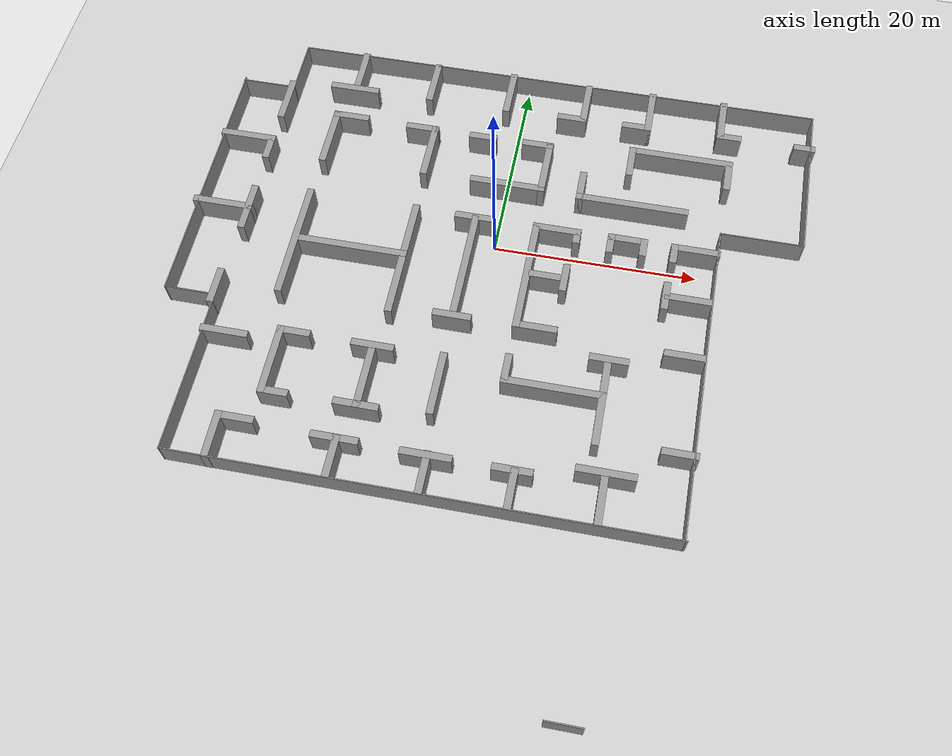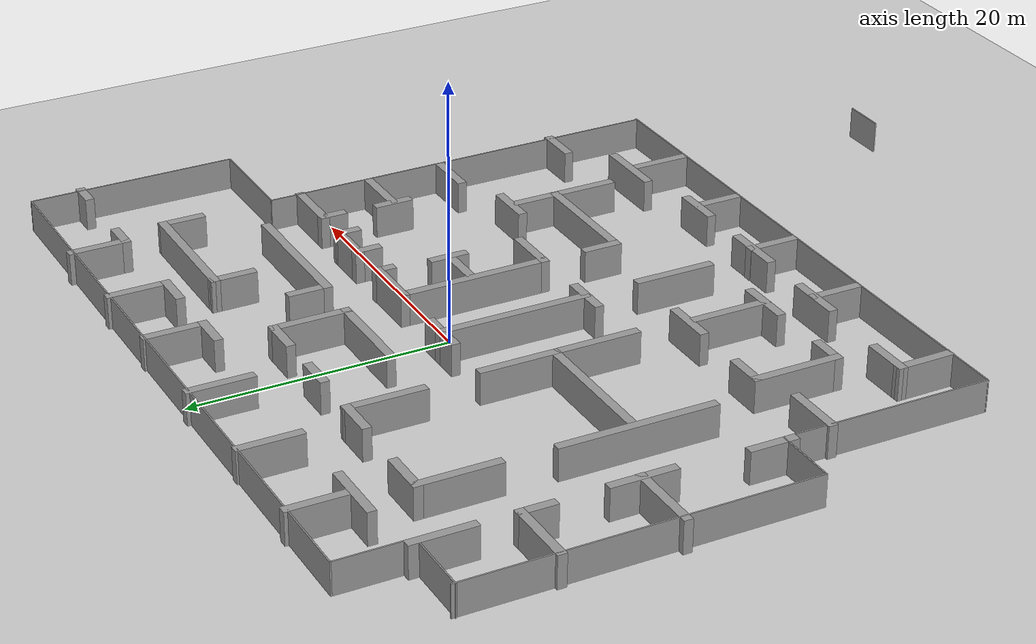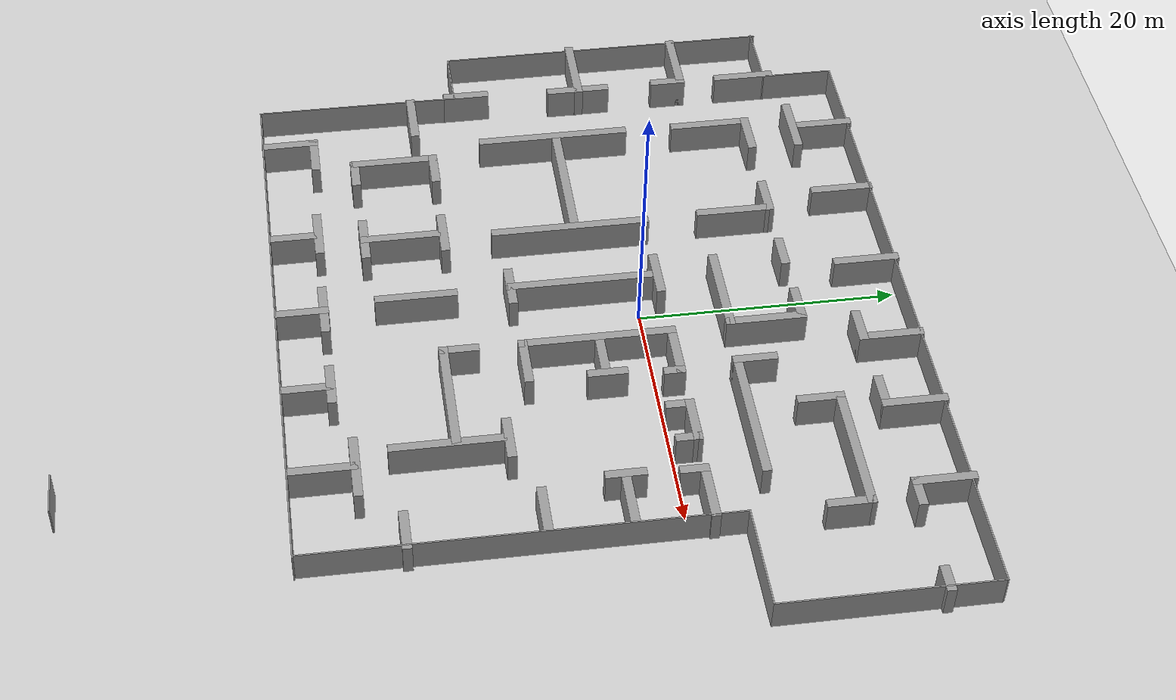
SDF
<sdf version="1.7">
 <world name="default">
  <model name="ground_plane">
   <static>1</static>
   <link name="Wall_split_y">
    <collision name="Wall_split_y_Collision">
     <geometry><box><size>1 100 2.5</size></box></geometry>
     <pose>4.0 0 1.25 0 -0 0</pose>
    </collision>
    <visual name="Wall_split_y_Visual">
     <pose>4.0 0 1.25 0 -0 0</pose>
     <geometry><box><size>1 100 2.5</size></box></geometry>
     <material>
      <script><uri>file://media/materials/scripts/gazebo.material</uri><name>Gazebo/Grey</name></script>
      <ambient>1 1 1 1</ambient>
     </material>
     <meta><layer>0</layer></meta>
    </visual>
   </link>
   <link name="link">
    <collision name="collision">
     <geometry><plane><normal>0 0 1</normal><size>100 100</size></plane></geometry>
     <surface><friction><ode><mu>100</mu><mu2>50</mu2></ode></friction></surface>
    </collision>
    <visual name="visual">
     <cast_shadows>0</cast_shadows>
     <geometry><plane><normal>0 0 1</normal><size>100 100</size></plane></geometry>
     <material>
      <script><uri>file://media/materials/scripts/gazebo.material</uri><name>Gazebo/Grey</name></script>
     </material>
    </visual>
   </link>
  </model>
  <model name="map8">
   <pose>-0.03691 -11.806 0 0 -0 0</pose>
   <link name="Wall_0">
    <collision name="Wall_0_Collision">
     <geometry><box><size>26.6 0.105 2.5</size></box></geometry>
     <pose>0 0 1.25 0 -0 0</pose>
    </collision>
    <visual name="Wall_0_Visual">
     <pose>0 0 1.25 0 -0 0</pose>
     <geometry><box><size>26.6 0.105 2.5</size></box></geometry>
     <material>
      <script><uri>file://media/materials/scripts/gazebo.material</uri><name>Gazebo/Grey</name></script>
      <ambient>1 1 1 1</ambient>
     </material>
     <meta><layer>0</layer></meta>
    </visual>
    <pose>-29.80348 13.45694 0 0 0 -1.5708</pose>
   </link>
   <link name="Wall_1">
    <collision name="Wall_1_Collision">
     <geometry><box><size>5.075 0.105 2.5</size></box></geometry>
     <pose>0 0 1.25 0 -0 0</pose>
    </collision>
    <visual name="Wall_1_Visual">
     <pose>0 0 1.25 0 -0 0</pose>
     <geometry><box><size>5.075 0.105 2.5</size></box></geometry>
     <material>
      <script><uri>file://media/materials/scripts/gazebo.material</uri><name>Gazebo/Grey</name></script>
      <ambient>1 1 1 1</ambient>
     </material>
     <meta><layer>0</layer></meta>
    </visual>
    <pose>-27.31848 0.209474 0 0 0 0</pose>
   </link>
   <link name="Wall_100">
    <collision name="Wall_100_Collision">
     <geometry><box><size>5.495042 0.7 2.5</size></box></geometry>
     <pose>0 0 1.25 0 -0 0</pose>
    </collision>
    <visual name="Wall_100_Visual">
     <pose>0 0 1.25 0 -0 0</pose>
     <geometry><box><size>5.495042 0.7 2.5</size></box></geometry>
     <material>
      <script><uri>file://media/materials/scripts/gazebo.material</uri><name>Gazebo/Grey</name></script>
      <ambient>1 1 1 1</ambient>
     </material>
     <meta><layer>0</layer></meta>
    </visual>
    <pose>14.28707 -11.01093 0 0 0 0</pose>
   </link>
   <link name="Wall_102">
    <collision name="Wall_102_Collision">
     <geometry><box><size>5.145 0.7 2.5</size></box></geometry>
     <pose>0 0 1.25 0 -0 0</pose>
    </collision>
    <visual name="Wall_102_Visual">
     <pose>0 0 1.25 0 -0 0</pose>
     <geometry><box><size>5.145 0.7 2.5</size></box></geometry>
     <material>
      <script><uri>file://media/materials/scripts/gazebo.material</uri><name>Gazebo/Grey</name></script>
      <ambient>1 1 1 1</ambient>
     </material>
     <meta><layer>0</layer></meta>
    </visual>
    <pose>14.22071 -13.33388 0 0 0 -1.5708</pose>
   </link>
   <link name="Wall_104">
    <collision name="Wall_104_Collision">
     <geometry><box><size>3.325 0.105 2.5</size></box></geometry>
     <pose>0 0 1.25 0 -0 0</pose>
    </collision>
    <visual name="Wall_104_Visual">
     <pose>0 0 1.25 0 -0 0</pose>
     <geometry><box><size>3.325 0.105 2.5</size></box></geometry>
     <material>
      <script><uri>file://media/materials/scripts/gazebo.material</uri><name>Gazebo/Grey</name></script>
      <ambient>1 1 1 1</ambient>
     </material>
     <meta><layer>0</layer></meta>
    </visual>
    <pose>13.96444 -32.51283 0 0 0 0</pose>
   </link>
   <link name="Wall_106">
    <collision name="Wall_106_Collision">
     <geometry><box><size>3.92 0.7 2.5</size></box></geometry>
     <pose>0 0 1.25 0 -0 0</pose>
    </collision>
    <visual name="Wall_106_Visual">
     <pose>0 0 1.25 0 -0 0</pose>
     <geometry><box><size>3.92 0.7 2.5</size></box></geometry>
     <material>
      <script><uri>file://media/materials/scripts/gazebo.material</uri><name>Gazebo/Grey</name></script>
      <ambient>1 1 1 1</ambient>
     </material>
     <meta><layer>0</layer></meta>
    </visual>
    <pose>6.376062 -13.98369 0 0 0 -1.5708</pose>
   </link>
   <link name="Wall_108">
    <collision name="Wall_108_Collision">
     <geometry><box><size>3.744853 0.7 2.5</size></box></geometry>
     <pose>0 0 1.25 0 -0 0</pose>
    </collision>
    <visual name="Wall_108_Visual">
     <pose>0 0 1.25 0 -0 0</pose>
     <geometry><box><size>3.744853 0.7 2.5</size></box></geometry>
     <material>
      <script><uri>file://media/materials/scripts/gazebo.material</uri><name>Gazebo/Grey</name></script>
      <ambient>1 1 1 1</ambient>
     </material>
     <meta><layer>0</layer></meta>
    </visual>
    <pose>6.167042 -12.22963 0 0 0 0</pose>
   </link>
   <link name="Wall_110">
    <collision name="Wall_110_Collision">
     <geometry><box><size>3.395147 0.7 2.5</size></box></geometry>
     <pose>0 0 1.25 0 -0 0</pose>
    </collision>
    <visual name="Wall_110_Visual">
     <pose>0 0 1.25 0 -0 0</pose>
     <geometry><box><size>3.395147 0.7 2.5</size></box></geometry>
     <material>
      <script><uri>file://media/materials/scripts/gazebo.material</uri><name>Gazebo/Grey</name></script>
      <ambient>1 1 1 1</ambient>
     </material>
     <meta><layer>0</layer></meta>
    </visual>
    <pose>20.44357 -8.03873 0 0 0 3.14159</pose>
   </link>
   <link name="Wall_112">
    <collision name="Wall_112_Collision">
     <geometry><box><size>3.92 0.7 2.5</size></box></geometry>
     <pose>0 0 1.25 0 -0 0</pose>
    </collision>
    <visual name="Wall_112_Visual">
     <pose>0 0 1.25 0 -0 0</pose>
     <geometry><box><size>3.92 0.7 2.5</size></box></geometry>
     <material>
      <script><uri>file://media/materials/scripts/gazebo.material</uri><name>Gazebo/Grey</name></script>
      <ambient>1 1 1 1</ambient>
     </material>
     <meta><layer>0</layer></meta>
    </visual>
    <pose>19.79712 1.792875 0 0 0 3.14159</pose>
   </link>
   <link name="Wall_114">
    <collision name="Wall_114_Collision">
     <geometry><box><size>3.045343 0.7 2.5</size></box></geometry>
     <pose>0 0 1.25 0 -0 0</pose>
    </collision>
    <visual name="Wall_114_Visual">
     <pose>0 0 1.25 0 -0 0</pose>
     <geometry><box><size>3.045343 0.7 2.5</size></box></geometry>
     <material>
      <script><uri>file://media/materials/scripts/gazebo.material</uri><name>Gazebo/Grey</name></script>
      <ambient>1 1 1 1</ambient>
     </material>
     <meta><layer>0</layer></meta>
    </visual>
    <pose>17.32297 7.93037 0 0 0 -1.5708</pose>
   </link>
   <link name="Wall_116">
    <collision name="Wall_116_Collision">
     <geometry><box><size>4.55 0.7 2.5</size></box></geometry>
     <pose>0 0 1.25 0 -0 0</pose>
    </collision>
    <visual name="Wall_116_Visual">
     <pose>0 0 1.25 0 -0 0</pose>
     <geometry><box><size>4.55 0.7 2.5</size></box></geometry>
     <material>
      <script><uri>file://media/materials/scripts/gazebo.material</uri><name>Gazebo/Grey</name></script>
      <ambient>1 1 1 1</ambient>
     </material>
     <meta><layer>0</layer></meta>
    </visual>
    <pose>19.44957 7.89537 0 0 0 0</pose>
   </link>
   <link name="Wall_118">
    <collision name="Wall_118_Collision">
     <geometry><box><size>2.170014 0.7 2.5</size></box></geometry>
     <pose>0 0 1.25 0 -0 0</pose>
    </collision>
    <visual name="Wall_118_Visual">
     <pose>0 0 1.25 0 -0 0</pose>
     <geometry><box><size>2.170014 0.7 2.5</size></box></geometry>
     <material>
      <script><uri>file://media/materials/scripts/gazebo.material</uri><name>Gazebo/Grey</name></script>
      <ambient>1 1 1 1</ambient>
     </material>
     <meta><layer>0</layer></meta>
    </visual>
    <pose>11.31802 12.88987 0 0 0 1.56841</pose>
   </link>
   <link name="Wall_119">
    <collision name="Wall_119_Collision">
     <geometry><box><size>3.924207 0.7 2.5</size></box></geometry>
     <pose>0 0 1.25 0 -0 0</pose>
    </collision>
    <visual name="Wall_119_Visual">
     <pose>0 0 1.25 0 -0 0</pose>
     <geometry><box><size>3.924207 0.7 2.5</size></box></geometry>
     <material>
      <script><uri>file://media/materials/scripts/gazebo.material</uri><name>Gazebo/Grey</name></script>
      <ambient>1 1 1 1</ambient>
     </material>
     <meta><layer>0</layer></meta>
    </visual>
    <pose>12.93187 13.62102 0 0 0 -0.002388</pose>
   </link>
   <link name="Wall_120">
    <collision name="Wall_120_Collision">
     <geometry><box><size>1.994965 0.7 2.5</size></box></geometry>
     <pose>0 0 1.25 0 -0 0</pose>
    </collision>
    <visual name="Wall_120_Visual">
     <pose>0 0 1.25 0 -0 0</pose>
     <geometry><box><size>1.994965 0.7 2.5</size></box></geometry>
     <material>
      <script><uri>file://media/materials/scripts/gazebo.material</uri><name>Gazebo/Grey</name></script>
      <ambient>1 1 1 1</ambient>
     </material>
     <meta><layer>0</layer></meta>
    </visual>
    <pose>14.54187 12.96967 0 0 0 -1.57404</pose>
   </link>
   <link name="Wall_122">
    <collision name="Wall_122_Collision">
     <geometry><box><size>2.170014 0.7 2.5</size></box></geometry>
     <pose>0 0 1.25 0 -0 0</pose>
    </collision>
    <visual name="Wall_122_Visual">
     <pose>0 0 1.25 0 -0 0</pose>
     <geometry><box><size>2.170014 0.7 2.5</size></box></geometry>
     <material>
      <script><uri>file://media/materials/scripts/gazebo.material</uri><name>Gazebo/Grey</name></script>
      <ambient>1 1 1 1</ambient>
     </material>
     <meta><layer>0</layer></meta>
    </visual>
    <pose>17.54207 12.81987 0 0 0 1.5708</pose>
   </link>
   <link name="Wall_123">
    <collision name="Wall_123_Collision">
     <geometry><box><size>4.795196 0.7 2.5</size></box></geometry>
     <pose>0 0 1.25 0 -0 0</pose>
    </collision>
    <visual name="Wall_123_Visual">
     <pose>0 0 1.25 0 -0 0</pose>
     <geometry><box><size>4.795196 0.7 2.5</size></box></geometry>
     <material>
      <script><uri>file://media/materials/scripts/gazebo.material</uri><name>Gazebo/Grey</name></script>
      <ambient>1 1 1 1</ambient>
     </material>
     <meta><layer>0</layer></meta>
    </visual>
    <pose>19.58957 13.55487 0 0 0 0</pose>
   </link>
   <link name="Wall_125">
    <collision name="Wall_125_Collision">
     <geometry><box><size>4.55 0.7 2.5</size></box></geometry>
     <pose>0 0 1.25 0 -0 0</pose>
    </collision>
    <visual name="Wall_125_Visual">
     <pose>0 0 1.25 0 -0 0</pose>
     <geometry><box><size>4.55 0.7 2.5</size></box></geometry>
     <material>
      <script><uri>file://media/materials/scripts/gazebo.material</uri><name>Gazebo/Grey</name></script>
      <ambient>1 1 1 1</ambient>
     </material>
     <meta><layer>0</layer></meta>
    </visual>
    <pose>-17.88633 30.17357 0 0 0 -1.5708</pose>
   </link>
   <link name="Wall_128">
    <collision name="Wall_128_Collision">
     <geometry><box><size>5.144832 0.7 2.5</size></box></geometry>
     <pose>0 0 1.25 0 -0 0</pose>
    </collision>
    <visual name="Wall_128_Visual">
     <pose>0 0 1.25 0 -0 0</pose>
     <geometry><box><size>5.144832 0.7 2.5</size></box></geometry>
     <material>
      <script><uri>file://media/materials/scripts/gazebo.material</uri><name>Gazebo/Grey</name></script>
      <ambient>1 1 1 1</ambient>
     </material>
     <meta><layer>0</layer></meta>
    </visual>
    <pose>-18.02283 27.55067 0 0 0 0</pose>
   </link>
   <link name="Wall_13">
    <collision name="Wall_13_Collision">
     <geometry><box><size>4.97 0.7 2.5</size></box></geometry>
     <pose>0 0 1.25 0 -0 0</pose>
    </collision>
    <visual name="Wall_13_Visual">
     <pose>0 0 1.25 0 -0 0</pose>
     <geometry><box><size>4.97 0.7 2.5</size></box></geometry>
     <material>
      <script><uri>file://media/materials/scripts/gazebo.material</uri><name>Gazebo/Grey</name></script>
      <ambient>1 1 1 1</ambient>
     </material>
     <meta><layer>0</layer></meta>
    </visual>
    <pose>-24.71105 24.76964 0 0 0 -1.5708</pose>
   </link>
   <link name="Wall_130">
    <collision name="Wall_130_Collision">
     <geometry><box><size>4.970042 0.7 2.5</size></box></geometry>
     <pose>0 0 1.25 0 -0 0</pose>
    </collision>
    <visual name="Wall_130_Visual">
     <pose>0 0 1.25 0 -0 0</pose>
     <geometry><box><size>4.970042 0.7 2.5</size></box></geometry>
     <material>
      <script><uri>file://media/materials/scripts/gazebo.material</uri><name>Gazebo/Grey</name></script>
      <ambient>1 1 1 1</ambient>
     </material>
     <meta><layer>0</layer></meta>
    </visual>
    <pose>-9.95673 29.84317 0 0 0 -1.5708</pose>
   </link>
   <link name="Wall_132">
    <collision name="Wall_132_Collision">
     <geometry><box><size>5.145336 0.7 2.5</size></box></geometry>
     <pose>0 0 1.25 0 -0 0</pose>
    </collision>
    <visual name="Wall_132_Visual">
     <pose>0 0 1.25 0 -0 0</pose>
     <geometry><box><size>5.145336 0.7 2.5</size></box></geometry>
     <material>
      <script><uri>file://media/materials/scripts/gazebo.material</uri><name>Gazebo/Grey</name></script>
      <ambient>1 1 1 1</ambient>
     </material>
     <meta><layer>0</layer></meta>
    </visual>
    <pose>-1.737358 29.88307 0 0 0 -1.5708</pose>
   </link>
   <link name="Wall_134">
    <collision name="Wall_134_Collision">
     <geometry><box><size>4.97 0.7 2.5</size></box></geometry>
     <pose>0 0 1.25 0 -0 0</pose>
    </collision>
    <visual name="Wall_134_Visual">
     <pose>0 0 1.25 0 -0 0</pose>
     <geometry><box><size>4.97 0.7 2.5</size></box></geometry>
     <material>
      <script><uri>file://media/materials/scripts/gazebo.material</uri><name>Gazebo/Grey</name></script>
      <ambient>1 1 1 1</ambient>
     </material>
     <meta><layer>0</layer></meta>
    </visual>
    <pose>6.388942 29.85857 0 0 0 -1.5708</pose>
   </link>
   <link name="Wall_135">
    <collision name="Wall_135_Collision">
     <geometry><box><size>3.044909 0.7 2.5</size></box></geometry>
     <pose>0 0 1.25 0 -0 0</pose>
    </collision>
    <visual name="Wall_135_Visual">
     <pose>0 0 1.25 0 -0 0</pose>
     <geometry><box><size>3.044909 0.7 2.5</size></box></geometry>
     <material>
      <script><uri>file://media/materials/scripts/gazebo.material</uri><name>Gazebo/Grey</name></script>
      <ambient>1 1 1 1</ambient>
     </material>
     <meta><layer>0</layer></meta>
    </visual>
    <pose>5.216442 27.72357 0 0 0 3.14159</pose>
   </link>
   <link name="Wall_138">
    <collision name="Wall_138_Collision">
     <geometry><box><size>2.170014 0.7 2.5</size></box></geometry>
     <pose>0 0 1.25 0 -0 0</pose>
    </collision>
    <visual name="Wall_138_Visual">
     <pose>0 0 1.25 0 -0 0</pose>
     <geometry><box><size>2.170014 0.7 2.5</size></box></geometry>
     <material>
      <script><uri>file://media/materials/scripts/gazebo.material</uri><name>Gazebo/Grey</name></script>
      <ambient>1 1 1 1</ambient>
     </material>
     <meta><layer>0</layer></meta>
    </visual>
    <pose>29.27127 28.11557 0 0 0 3.14159</pose>
   </link>
   <link name="Wall_140">
    <collision name="Wall_140_Collision">
     <geometry><box><size>2.870301 0.7 2.5</size></box></geometry>
     <pose>0 0 1.25 0 -0 0</pose>
    </collision>
    <visual name="Wall_140_Visual">
     <pose>0 0 1.25 0 -0 0</pose>
     <geometry><box><size>2.870301 0.7 2.5</size></box></geometry>
     <material>
      <script><uri>file://media/materials/scripts/gazebo.material</uri><name>Gazebo/Grey</name></script>
      <ambient>1 1 1 1</ambient>
     </material>
     <meta><layer>0</layer></meta>
    </visual>
    <pose>-3.418758 23.59707 0 0 0 0</pose>
   </link>
   <link name="Wall_15">
    <collision name="Wall_15_Collision">
     <geometry><box><size>5.67 0.7 2.5</size></box></geometry>
     <pose>0 0 1.25 0 -0 0</pose>
    </collision>
    <visual name="Wall_15_Visual">
     <pose>0 0 1.25 0 -0 0</pose>
     <geometry><box><size>5.67 0.7 2.5</size></box></geometry>
     <material>
      <script><uri>file://media/materials/scripts/gazebo.material</uri><name>Gazebo/Grey</name></script>
      <ambient>1 1 1 1</ambient>
     </material>
     <meta><layer>0</layer></meta>
    </visual>
    <pose>-27.27753 19.37257 0 0 0 0</pose>
   </link>
   <link name="Wall_16">
    <collision name="Wall_16_Collision">
     <geometry><box><size>2.870294 0.7 2.5</size></box></geometry>
     <pose>0 0 1.25 0 -0 0</pose>
    </collision>
    <visual name="Wall_16_Visual">
     <pose>0 0 1.25 0 -0 0</pose>
     <geometry><box><size>2.870294 0.7 2.5</size></box></geometry>
     <material>
      <script><uri>file://media/materials/scripts/gazebo.material</uri><name>Gazebo/Grey</name></script>
      <ambient>1 1 1 1</ambient>
     </material>
     <meta><layer>0</layer></meta>
    </visual>
    <pose>-24.79253 18.28757 0 0 0 -1.5708</pose>
   </link>
   <link name="Wall_18">
    <collision name="Wall_18_Collision">
     <geometry><box><size>6.020189 0.7 2.5</size></box></geometry>
     <pose>0 0 1.25 0 -0 0</pose>
    </collision>
    <visual name="Wall_18_Visual">
     <pose>0 0 1.25 0 -0 0</pose>
     <geometry><box><size>6.020189 0.7 2.5</size></box></geometry>
     <material>
      <script><uri>file://media/materials/scripts/gazebo.material</uri><name>Gazebo/Grey</name></script>
      <ambient>1 1 1 1</ambient>
     </material>
     <meta><layer>0</layer></meta>
    </visual>
    <pose>-27.34613 10.66807 0 0 0 0</pose>
   </link>
   <link name="Wall_2">
    <collision name="Wall_2_Collision">
     <geometry><box><size>16.23762 0.105 2.5</size></box></geometry>
     <pose>0 0 1.25 0 -0 0</pose>
    </collision>
    <visual name="Wall_2_Visual">
     <pose>0 0 1.25 0 -0 0</pose>
     <geometry><box><size>16.23762 0.105 2.5</size></box></geometry>
     <material>
      <script><uri>file://media/materials/scripts/gazebo.material</uri><name>Gazebo/Grey</name></script>
      <ambient>1 1 1 1</ambient>
     </material>
     <meta><layer>0</layer></meta>
    </visual>
    <pose>-24.86505 -7.85666 0 0 0 -1.57471</pose>
   </link>
   <link name="Wall_20">
    <collision name="Wall_20_Collision">
     <geometry><box><size>5.144832 0.7 2.5</size></box></geometry>
     <pose>0 0 1.25 0 -0 0</pose>
    </collision>
    <visual name="Wall_20_Visual">
     <pose>0 0 1.25 0 -0 0</pose>
     <geometry><box><size>5.144832 0.7 2.5</size></box></geometry>
     <material>
      <script><uri>file://media/materials/scripts/gazebo.material</uri><name>Gazebo/Grey</name></script>
      <ambient>1 1 1 1</ambient>
     </material>
     <meta><layer>0</layer></meta>
    </visual>
    <pose>-24.71063 10.63657 0 0 0 -1.5708</pose>
   </link>
   <link name="Wall_22">
    <collision name="Wall_22_Collision">
     <geometry><box><size>12.14514 0.7 2.5</size></box></geometry>
     <pose>0 0 1.25 0 -0 0</pose>
    </collision>
    <visual name="Wall_22_Visual">
     <pose>0 0 1.25 0 -0 0</pose>
     <geometry><box><size>12.14514 0.7 2.5</size></box></geometry>
     <material>
      <script><uri>file://media/materials/scripts/gazebo.material</uri><name>Gazebo/Grey</name></script>
      <ambient>1 1 1 1</ambient>
     </material>
     <meta><layer>0</layer></meta>
    </visual>
    <pose>-19.11063 7.74557 0 0 0 -1.5708</pose>
   </link>
   <link name="Wall_24">
    <collision name="Wall_24_Collision">
     <geometry><box><size>10.85 0.7 2.5</size></box></geometry>
     <pose>0 0 1.25 0 -0 0</pose>
    </collision>
    <visual name="Wall_24_Visual">
     <pose>0 0 1.25 0 -0 0</pose>
     <geometry><box><size>10.85 0.7 2.5</size></box></geometry>
     <material>
      <script><uri>file://media/materials/scripts/gazebo.material</uri><name>Gazebo/Grey</name></script>
      <ambient>1 1 1 1</ambient>
     </material>
     <meta><layer>0</layer></meta>
    </visual>
    <pose>-13.38673 7.98987 0 0 0 0</pose>
   </link>
   <link name="Wall_26">
    <collision name="Wall_26_Collision">
     <geometry><box><size>12.49514 0.7 2.5</size></box></geometry>
     <pose>0 0 1.25 0 -0 0</pose>
    </collision>
    <visual name="Wall_26_Visual">
     <pose>0 0 1.25 0 -0 0</pose>
     <geometry><box><size>12.49514 0.7 2.5</size></box></geometry>
     <material>
      <script><uri>file://media/materials/scripts/gazebo.material</uri><name>Gazebo/Grey</name></script>
      <ambient>1 1 1 1</ambient>
     </material>
     <meta><layer>0</layer></meta>
    </visual>
    <pose>-8.27533 7.63147 0 0 0 -1.5708</pose>
   </link>
   <link name="Wall_28">
    <collision name="Wall_28_Collision">
     <geometry><box><size>3.745 0.7 2.5</size></box></geometry>
     <pose>0 0 1.25 0 -0 0</pose>
    </collision>
    <visual name="Wall_28_Visual">
     <pose>0 0 1.25 0 -0 0</pose>
     <geometry><box><size>3.745 0.7 2.5</size></box></geometry>
     <material>
      <script><uri>file://media/materials/scripts/gazebo.material</uri><name>Gazebo/Grey</name></script>
      <ambient>1 1 1 1</ambient>
     </material>
     <meta><layer>0</layer></meta>
    </visual>
    <pose>-25.11082 1.220604 0 0 0 -1.5708</pose>
   </link>
   <link name="Wall_3">
    <collision name="Wall_3_Collision">
     <geometry><box><size>46.9 0.105 2.5</size></box></geometry>
     <pose>0 0 1.25 0 -0 0</pose>
    </collision>
    <visual name="Wall_3_Visual">
     <pose>0 0 1.25 0 -0 0</pose>
     <geometry><box><size>46.9 0.105 2.5</size></box></geometry>
     <material>
      <script><uri>file://media/materials/scripts/gazebo.material</uri><name>Gazebo/Grey</name></script>
      <ambient>1 1 1 1</ambient>
     </material>
     <meta><layer>0</layer></meta>
    </visual>
    <pose>-1.499064 -15.92276 0 0 0 0</pose>
   </link>
   <link name="Wall_30">
    <collision name="Wall_30_Collision">
     <geometry><box><size>4.619671 0.7 2.5</size></box></geometry>
     <pose>0 0 1.25 0 -0 0</pose>
    </collision>
    <visual name="Wall_30_Visual">
     <pose>0 0 1.25 0 -0 0</pose>
     <geometry><box><size>4.619671 0.7 2.5</size></box></geometry>
     <material>
      <script><uri>file://media/materials/scripts/gazebo.material</uri><name>Gazebo/Grey</name></script>
      <ambient>1 1 1 1</ambient>
     </material>
     <meta><layer>0</layer></meta>
    </visual>
    <pose>-22.81083 -3.453758 0 0 0 0</pose>
   </link>
   <link name="Wall_32">
    <collision name="Wall_32_Collision">
     <geometry><box><size>3.745 0.7 2.5</size></box></geometry>
     <pose>0 0 1.25 0 -0 0</pose>
    </collision>
    <visual name="Wall_32_Visual">
     <pose>0 0 1.25 0 -0 0</pose>
     <geometry><box><size>3.745 0.7 2.5</size></box></geometry>
     <material>
      <script><uri>file://media/materials/scripts/gazebo.material</uri><name>Gazebo/Grey</name></script>
      <ambient>1 1 1 1</ambient>
     </material>
     <meta><layer>0</layer></meta>
    </visual>
    <pose>-17.46773 23.75457 0 0 0 3.14159</pose>
   </link>
   <link name="Wall_33">
    <collision name="Wall_33_Collision">
     <geometry><box><size>6.544685 0.7 2.5</size></box></geometry>
     <pose>0 0 1.25 0 -0 0</pose>
    </collision>
    <visual name="Wall_33_Visual">
     <pose>0 0 1.25 0 -0 0</pose>
     <geometry><box><size>6.544685 0.7 2.5</size></box></geometry>
     <material>
      <script><uri>file://media/materials/scripts/gazebo.material</uri><name>Gazebo/Grey</name></script>
      <ambient>1 1 1 1</ambient>
     </material>
     <meta><layer>0</layer></meta>
    </visual>
    <pose>-18.99023 20.83207 0 0 0 -1.5708</pose>
   </link>
   <link name="Wall_35">
    <collision name="Wall_35_Collision">
     <geometry><box><size>3.39486 0.7 2.5</size></box></geometry>
     <pose>0 0 1.25 0 -0 0</pose>
    </collision>
    <visual name="Wall_35_Visual">
     <pose>0 0 1.25 0 -0 0</pose>
     <geometry><box><size>3.39486 0.7 2.5</size></box></geometry>
     <material>
      <script><uri>file://media/materials/scripts/gazebo.material</uri><name>Gazebo/Grey</name></script>
      <ambient>1 1 1 1</ambient>
     </material>
     <meta><layer>0</layer></meta>
    </visual>
    <pose>-9.82933 23.63347 0 0 0 0</pose>
   </link>
   <link name="Wall_36">
    <collision name="Wall_36_Collision">
     <geometry><box><size>6.195357 0.7 2.5</size></box></geometry>
     <pose>0 0 1.25 0 -0 0</pose>
    </collision>
    <visual name="Wall_36_Visual">
     <pose>0 0 1.25 0 -0 0</pose>
     <geometry><box><size>6.195357 0.7 2.5</size></box></geometry>
     <material>
      <script><uri>file://media/materials/scripts/gazebo.material</uri><name>Gazebo/Grey</name></script>
      <ambient>1 1 1 1</ambient>
     </material>
     <meta><layer>0</layer></meta>
    </visual>
    <pose>-8.49198 20.88597 0 0 0 -1.57449</pose>
   </link>
   <link name="Wall_38">
    <collision name="Wall_38_Collision">
     <geometry><box><size>3.22 0.7 2.5</size></box></geometry>
     <pose>0 0 1.25 0 -0 0</pose>
    </collision>
    <visual name="Wall_38_Visual">
     <pose>0 0 1.25 0 -0 0</pose>
     <geometry><box><size>3.22 0.7 2.5</size></box></geometry>
     <material>
      <script><uri>file://media/materials/scripts/gazebo.material</uri><name>Gazebo/Grey</name></script>
      <ambient>1 1 1 1</ambient>
     </material>
     <meta><layer>0</layer></meta>
    </visual>
    <pose>2.297442 23.63347 0 0 0 0</pose>
   </link>
   <link name="Wall_39">
    <collision name="Wall_39_Collision">
     <geometry><box><size>6.195322 0.7 2.5</size></box></geometry>
     <pose>0 0 1.25 0 -0 0</pose>
    </collision>
    <visual name="Wall_39_Visual">
     <pose>0 0 1.25 0 -0 0</pose>
     <geometry><box><size>6.195322 0.7 2.5</size></box></geometry>
     <material>
      <script><uri>file://media/materials/scripts/gazebo.material</uri><name>Gazebo/Grey</name></script>
      <ambient>1 1 1 1</ambient>
     </material>
     <meta><layer>0</layer></meta>
    </visual>
    <pose>3.557442 20.88597 0 0 0 -1.5708</pose>
   </link>
   <link name="Wall_4">
    <collision name="Wall_4_Collision">
     <geometry><box><size>31.98727 0.105 2.5</size></box></geometry>
     <pose>0 0 1.25 0 -0 0</pose>
    </collision>
    <visual name="Wall_4_Visual">
     <pose>0 0 1.25 0 -0 0</pose>
     <geometry><box><size>31.98727 0.105 2.5</size></box></geometry>
     <material>
      <script><uri>file://media/materials/scripts/gazebo.material</uri><name>Gazebo/Grey</name></script>
      <ambient>1 1 1 1</ambient>
     </material>
     <meta><layer>0</layer></meta>
    </visual>
    <pose>21.76153 0.018344 0 0 0 1.56923</pose>
   </link>
   <link name="Wall_40">
    <collision name="Wall_40_Collision">
     <geometry><box><size>7.59493 0.7 2.5</size></box></geometry>
     <pose>0 0 1.25 0 -0 0</pose>
    </collision>
    <visual name="Wall_40_Visual">
     <pose>0 0 1.25 0 -0 0</pose>
     <geometry><box><size>7.59493 0.7 2.5</size></box></geometry>
     <material>
      <script><uri>file://media/materials/scripts/gazebo.material</uri><name>Gazebo/Grey</name></script>
      <ambient>1 1 1 1</ambient>
     </material>
     <meta><layer>0</layer></meta>
    </visual>
    <pose>0.109944 18.13847 0 0 0 3.14159</pose>
   </link>
   <link name="Wall_42">
    <collision name="Wall_42_Collision">
     <geometry><box><size>4.094762 0.7 2.5</size></box></geometry>
     <pose>0 0 1.25 0 -0 0</pose>
    </collision>
    <visual name="Wall_42_Visual">
     <pose>0 0 1.25 0 -0 0</pose>
     <geometry><box><size>4.094762 0.7 2.5</size></box></geometry>
     <material>
      <script><uri>file://media/materials/scripts/gazebo.material</uri><name>Gazebo/Grey</name></script>
      <ambient>1 1 1 1</ambient>
     </material>
     <meta><layer>0</layer></meta>
    </visual>
    <pose>-2.256058 13.52897 0 0 0 0</pose>
   </link>
   <link name="Wall_44">
    <collision name="Wall_44_Collision">
     <geometry><box><size>3.745 0.7 2.5</size></box></geometry>
     <pose>0 0 1.25 0 -0 0</pose>
    </collision>
    <visual name="Wall_44_Visual">
     <pose>0 0 1.25 0 -0 0</pose>
     <geometry><box><size>3.745 0.7 2.5</size></box></geometry>
     <material>
      <script><uri>file://media/materials/scripts/gazebo.material</uri><name>Gazebo/Grey</name></script>
      <ambient>1 1 1 1</ambient>
     </material>
     <meta><layer>0</layer></meta>
    </visual>
    <pose>-2.248358 2.143792 0 0 0 0</pose>
   </link>
   <link name="Wall_46">
    <collision name="Wall_46_Collision">
     <geometry><box><size>11.97014 0.7 2.5</size></box></geometry>
     <pose>0 0 1.25 0 -0 0</pose>
    </collision>
    <visual name="Wall_46_Visual">
     <pose>0 0 1.25 0 -0 0</pose>
     <geometry><box><size>11.97014 0.7 2.5</size></box></geometry>
     <material>
      <script><uri>file://media/materials/scripts/gazebo.material</uri><name>Gazebo/Grey</name></script>
      <ambient>1 1 1 1</ambient>
     </material>
     <meta><layer>0</layer></meta>
    </visual>
    <pose>-2.188858 7.89397 0 0 0 -1.5708</pose>
   </link>
   <link name="Wall_48">
    <collision name="Wall_48_Collision">
     <geometry><box><size>1.645 0.7 2.5</size></box></geometry>
     <pose>0 0 1.25 0 -0 0</pose>
    </collision>
    <visual name="Wall_48_Visual">
     <pose>0 0 1.25 0 -0 0</pose>
     <geometry><box><size>1.645 0.7 2.5</size></box></geometry>
     <material>
      <script><uri>file://media/materials/scripts/gazebo.material</uri><name>Gazebo/Grey</name></script>
      <ambient>1 1 1 1</ambient>
     </material>
     <meta><layer>0</layer></meta>
    </visual>
    <pose>7.97657 13.08797 0 0 0 1.5708</pose>
   </link>
   <link name="Wall_49">
    <collision name="Wall_49_Collision">
     <geometry><box><size>4.795 0.7 2.5</size></box></geometry>
     <pose>0 0 1.25 0 -0 0</pose>
    </collision>
    <visual name="Wall_49_Visual">
     <pose>0 0 1.25 0 -0 0</pose>
     <geometry><box><size>4.795 0.7 2.5</size></box></geometry>
     <material>
      <script><uri>file://media/materials/scripts/gazebo.material</uri><name>Gazebo/Grey</name></script>
      <ambient>1 1 1 1</ambient>
     </material>
     <meta><layer>0</layer></meta>
    </visual>
    <pose>5.929042 13.56047 0 0 0 3.14159</pose>
   </link>
   <link name="Wall_5">
    <collision name="Wall_5_Collision">
     <geometry><box><size>8.225 0.105 2.5</size></box></geometry>
     <pose>0 0 1.25 0 -0 0</pose>
    </collision>
    <visual name="Wall_5_Visual">
     <pose>0 0 1.25 0 -0 0</pose>
     <geometry><box><size>8.225 0.105 2.5</size></box></geometry>
     <material>
      <script><uri>file://media/materials/scripts/gazebo.material</uri><name>Gazebo/Grey</name></script>
      <ambient>1 1 1 1</ambient>
     </material>
     <meta><layer>0</layer></meta>
    </visual>
    <pose>25.84652 15.95944 0 0 0 0</pose>
   </link>
   <link name="Wall_50">
    <collision name="Wall_50_Collision">
     <geometry><box><size>11.96972 0.7 2.5</size></box></geometry>
     <pose>0 0 1.25 0 -0 0</pose>
    </collision>
    <visual name="Wall_50_Visual">
     <pose>0 0 1.25 0 -0 0</pose>
     <geometry><box><size>11.96972 0.7 2.5</size></box></geometry>
     <material>
      <script><uri>file://media/materials/scripts/gazebo.material</uri><name>Gazebo/Grey</name></script>
      <ambient>1 1 1 1</ambient>
     </material>
     <meta><layer>0</layer></meta>
    </visual>
    <pose>3.881542 7.92547 0 0 0 -1.5708</pose>
   </link>
   <link name="Wall_51">
    <collision name="Wall_51_Collision">
     <geometry><box><size>4.270098 0.7 2.5</size></box></geometry>
     <pose>0 0 1.25 0 -0 0</pose>
    </collision>
    <visual name="Wall_51_Visual">
     <pose>0 0 1.25 0 -0 0</pose>
     <geometry><box><size>4.270098 0.7 2.5</size></box></geometry>
     <material>
      <script><uri>file://media/materials/scripts/gazebo.material</uri><name>Gazebo/Grey</name></script>
      <ambient>1 1 1 1</ambient>
     </material>
     <meta><layer>0</layer></meta>
    </visual>
    <pose>5.666542 2.290442 0 0 0 0</pose>
   </link>
   <link name="Wall_53">
    <collision name="Wall_53_Collision">
     <geometry><box><size>3.15 0.7 2.5</size></box></geometry>
     <pose>0 0 1.25 0 -0 0</pose>
    </collision>
    <visual name="Wall_53_Visual">
     <pose>0 0 1.25 0 -0 0</pose>
     <geometry><box><size>3.15 0.7 2.5</size></box></geometry>
     <material>
      <script><uri>file://media/materials/scripts/gazebo.material</uri><name>Gazebo/Grey</name></script>
      <ambient>1 1 1 1</ambient>
     </material>
     <meta><layer>0</layer></meta>
    </visual>
    <pose>5.649742 8.05077 0 0 0 0</pose>
   </link>
   <link name="Wall_55">
    <collision name="Wall_55_Collision">
     <geometry><box><size>3.045168 0.7 2.5</size></box></geometry>
     <pose>0 0 1.25 0 -0 0</pose>
    </collision>
    <visual name="Wall_55_Visual">
     <pose>0 0 1.25 0 -0 0</pose>
     <geometry><box><size>3.045168 0.7 2.5</size></box></geometry>
     <material>
      <script><uri>file://media/materials/scripts/gazebo.material</uri><name>Gazebo/Grey</name></script>
      <ambient>1 1 1 1</ambient>
     </material>
     <meta><layer>0</layer></meta>
    </visual>
    <pose>7.55027 8.15647 0 0 0 -1.5708</pose>
   </link>
   <link name="Wall_57">
    <collision name="Wall_57_Collision">
     <geometry><box><size>3.395 0.7 2.5</size></box></geometry>
     <pose>0 0 1.25 0 -0 0</pose>
    </collision>
    <visual name="Wall_57_Visual">
     <pose>0 0 1.25 0 -0 0</pose>
     <geometry><box><size>3.395 0.7 2.5</size></box></geometry>
     <material>
      <script><uri>file://media/materials/scripts/gazebo.material</uri><name>Gazebo/Grey</name></script>
      <ambient>1 1 1 1</ambient>
     </material>
     <meta><layer>0</layer></meta>
    </visual>
    <pose>7.48937 19.24237 0 0 0 -1.5708</pose>
   </link>
   <link name="Wall_58">
    <collision name="Wall_58_Collision">
     <geometry><box><size>11.27035 0.7 2.5</size></box></geometry>
     <pose>0 0 1.25 0 -0 0</pose>
    </collision>
    <visual name="Wall_58_Visual">
     <pose>0 0 1.25 0 -0 0</pose>
     <geometry><box><size>11.27035 0.7 2.5</size></box></geometry>
     <material>
      <script><uri>file://media/materials/scripts/gazebo.material</uri><name>Gazebo/Grey</name></script>
      <ambient>1 1 1 1</ambient>
     </material>
     <meta><layer>0</layer></meta>
    </visual>
    <pose>12.77437 17.89487 0 0 0 0</pose>
   </link>
   <link name="Wall_6">
    <collision name="Wall_6_Collision">
     <geometry><box><size>16.275 0.105 2.5</size></box></geometry>
     <pose>0 0 1.25 0 -0 0</pose>
    </collision>
    <visual name="Wall_6_Visual">
     <pose>0 0 1.25 0 -0 0</pose>
     <geometry><box><size>16.275 0.105 2.5</size></box></geometry>
     <material>
      <script><uri>file://media/materials/scripts/gazebo.material</uri><name>Gazebo/Grey</name></script>
      <ambient>1 1 1 1</ambient>
     </material>
     <meta><layer>0</layer></meta>
    </visual>
    <pose>29.90652 24.04444 0 0 0 1.5708</pose>
   </link>
   <link name="Wall_60">
    <collision name="Wall_60_Collision">
     <geometry><box><size>3.570133 0.7 2.5</size></box></geometry>
     <pose>0 0 1.25 0 -0 0</pose>
    </collision>
    <visual name="Wall_60_Visual">
     <pose>0 0 1.25 0 -0 0</pose>
     <geometry><box><size>3.570133 0.7 2.5</size></box></geometry>
     <material>
      <script><uri>file://media/materials/scripts/gazebo.material</uri><name>Gazebo/Grey</name></script>
      <ambient>1 1 1 1</ambient>
     </material>
     <meta><layer>0</layer></meta>
    </visual>
    <pose>11.99387 23.21207 0 0 0 1.5708</pose>
   </link>
   <link name="Wall_61">
    <collision name="Wall_61_Collision">
     <geometry><box><size>10.57021 0.7 2.5</size></box></geometry>
     <pose>0 0 1.25 0 -0 0</pose>
    </collision>
    <visual name="Wall_61_Visual">
     <pose>0 0 1.25 0 -0 0</pose>
     <geometry><box><size>10.57021 0.7 2.5</size></box></geometry>
     <material>
      <script><uri>file://media/materials/scripts/gazebo.material</uri><name>Gazebo/Grey</name></script>
      <ambient>1 1 1 1</ambient>
     </material>
     <meta><layer>0</layer></meta>
    </visual>
    <pose>16.92887 24.63167 0 0 0 -0.003121</pose>
   </link>
   <link name="Wall_62">
    <collision name="Wall_62_Collision">
     <geometry><box><size>3.570077 0.7 2.5</size></box></geometry>
     <pose>0 0 1.25 0 -0 0</pose>
    </collision>
    <visual name="Wall_62_Visual">
     <pose>0 0 1.25 0 -0 0</pose>
     <geometry><box><size>3.570077 0.7 2.5</size></box></geometry>
     <material>
      <script><uri>file://media/materials/scripts/gazebo.material</uri><name>Gazebo/Grey</name></script>
      <ambient>1 1 1 1</ambient>
     </material>
     <meta><layer>0</layer></meta>
    </visual>
    <pose>21.86387 23.18127 0 0 0 -1.5708</pose>
   </link>
   <link name="Wall_64">
    <collision name="Wall_64_Collision">
     <geometry><box><size>4.97 0.7 2.5</size></box></geometry>
     <pose>0 0 1.25 0 -0 0</pose>
    </collision>
    <visual name="Wall_64_Visual">
     <pose>0 0 1.25 0 -0 0</pose>
     <geometry><box><size>4.97 0.7 2.5</size></box></geometry>
     <material>
      <script><uri>file://media/materials/scripts/gazebo.material</uri><name>Gazebo/Grey</name></script>
      <ambient>1 1 1 1</ambient>
     </material>
     <meta><layer>0</layer></meta>
    </visual>
    <pose>13.15027 29.95867 0 0 0 -1.5708</pose>
   </link>
   <link name="Wall_65">
    <collision name="Wall_65_Collision">
     <geometry><box><size>3.044692 0.7 2.5</size></box></geometry>
     <pose>0 0 1.25 0 -0 0</pose>
    </collision>
    <visual name="Wall_65_Visual">
     <pose>0 0 1.25 0 -0 0</pose>
     <geometry><box><size>3.044692 0.7 2.5</size></box></geometry>
     <material>
      <script><uri>file://media/materials/scripts/gazebo.material</uri><name>Gazebo/Grey</name></script>
      <ambient>1 1 1 1</ambient>
     </material>
     <meta><layer>0</layer></meta>
    </visual>
    <pose>11.97777 27.82367 0 0 0 3.14159</pose>
   </link>
   <link name="Wall_67">
    <collision name="Wall_67_Collision">
     <geometry><box><size>4.794713 0.7 2.5</size></box></geometry>
     <pose>0 0 1.25 0 -0 0</pose>
    </collision>
    <visual name="Wall_67_Visual">
     <pose>0 0 1.25 0 -0 0</pose>
     <geometry><box><size>4.794713 0.7 2.5</size></box></geometry>
     <material>
      <script><uri>file://media/materials/scripts/gazebo.material</uri><name>Gazebo/Grey</name></script>
      <ambient>1 1 1 1</ambient>
     </material>
     <meta><layer>0</layer></meta>
    </visual>
    <pose>20.63747 30.16797 0 0 0 -1.5708</pose>
   </link>
   <link name="Wall_68">
    <collision name="Wall_68_Collision">
     <geometry><box><size>2.52007 0.7 2.5</size></box></geometry>
     <pose>0 0 1.25 0 -0 0</pose>
    </collision>
    <visual name="Wall_68_Visual">
     <pose>0 0 1.25 0 -0 0</pose>
     <geometry><box><size>2.52007 0.7 2.5</size></box></geometry>
     <material>
      <script><uri>file://media/materials/scripts/gazebo.material</uri><name>Gazebo/Grey</name></script>
      <ambient>1 1 1 1</ambient>
     </material>
     <meta><layer>0</layer></meta>
    </visual>
    <pose>21.54747 28.12047 0 0 0 0</pose>
   </link>
   <link name="Wall_7">
    <collision name="Wall_7_Collision">
     <geometry><box><size>54.425 0.105 2.5</size></box></geometry>
     <pose>0 0 1.25 0 -0 0</pose>
    </collision>
    <visual name="Wall_7_Visual">
     <pose>0 0 1.25 0 -0 0</pose>
     <geometry><box><size>54.425 0.105 2.5</size></box></geometry>
     <material>
      <script><uri>file://media/materials/scripts/gazebo.material</uri><name>Gazebo/Grey</name></script>
      <ambient>1 1 1 1</ambient>
     </material>
     <meta><layer>0</layer></meta>
    </visual>
    <pose>2.746499 32.12944 0 0 0 3.14159</pose>
   </link>
   <link name="Wall_70">
    <collision name="Wall_70_Collision">
     <geometry><box><size>3.044741 0.7 2.5</size></box></geometry>
     <pose>0 0 1.25 0 -0 0</pose>
    </collision>
    <visual name="Wall_70_Visual">
     <pose>0 0 1.25 0 -0 0</pose>
     <geometry><box><size>3.044741 0.7 2.5</size></box></geometry>
     <material>
      <script><uri>file://media/materials/scripts/gazebo.material</uri><name>Gazebo/Grey</name></script>
      <ambient>1 1 1 1</ambient>
     </material>
     <meta><layer>0</layer></meta>
    </visual>
    <pose>3.837442 -2.496158 0 0 0 -1.5708</pose>
   </link>
   <link name="Wall_71">
    <collision name="Wall_71_Collision">
     <geometry><box><size>9.695 0.7 2.5</size></box></geometry>
     <pose>0 0 1.25 0 -0 0</pose>
    </collision>
    <visual name="Wall_71_Visual">
     <pose>0 0 1.25 0 -0 0</pose>
     <geometry><box><size>9.695 0.7 2.5</size></box></geometry>
     <material>
      <script><uri>file://media/materials/scripts/gazebo.material</uri><name>Gazebo/Grey</name></script>
      <ambient>1 1 1 1</ambient>
     </material>
     <meta><layer>0</layer></meta>
    </visual>
    <pose>8.33497 -3.668658 0 0 0 0</pose>
   </link>
   <link name="Wall_73">
    <collision name="Wall_73_Collision">
     <geometry><box><size>3.744762 0.7 2.5</size></box></geometry>
     <pose>0 0 1.25 0 -0 0</pose>
    </collision>
    <visual name="Wall_73_Visual">
     <pose>0 0 1.25 0 -0 0</pose>
     <geometry><box><size>3.744762 0.7 2.5</size></box></geometry>
     <material>
      <script><uri>file://media/materials/scripts/gazebo.material</uri><name>Gazebo/Grey</name></script>
      <ambient>1 1 1 1</ambient>
     </material>
     <meta><layer>0</layer></meta>
    </visual>
    <pose>12.96897 0.137239 0 0 0 0</pose>
   </link>
   <link name="Wall_75">
    <collision name="Wall_75_Collision">
     <geometry><box><size>8.575 0.7 2.5</size></box></geometry>
     <pose>0 0 1.25 0 -0 0</pose>
    </collision>
    <visual name="Wall_75_Visual">
     <pose>0 0 1.25 0 -0 0</pose>
     <geometry><box><size>8.575 0.7 2.5</size></box></geometry>
     <material>
      <script><uri>file://media/materials/scripts/gazebo.material</uri><name>Gazebo/Grey</name></script>
      <ambient>1 1 1 1</ambient>
     </material>
     <meta><layer>0</layer></meta>
    </visual>
    <pose>12.91339 -4.334358 0 0 0 -1.5708</pose>
   </link>
   <link name="Wall_77">
    <collision name="Wall_77_Collision">
     <geometry><box><size>3.219741 0.7 2.5</size></box></geometry>
     <pose>0 0 1.25 0 -0 0</pose>
    </collision>
    <visual name="Wall_77_Visual">
     <pose>0 0 1.25 0 -0 0</pose>
     <geometry><box><size>3.219741 0.7 2.5</size></box></geometry>
     <material>
      <script><uri>file://media/materials/scripts/gazebo.material</uri><name>Gazebo/Grey</name></script>
      <ambient>1 1 1 1</ambient>
     </material>
     <meta><layer>0</layer></meta>
    </visual>
    <pose>-16.39673 -2.306458 0 0 0 3.14159</pose>
   </link>
   <link name="Wall_78">
    <collision name="Wall_78_Collision">
     <geometry><box><size>7.06993 0.7 2.5</size></box></geometry>
     <pose>0 0 1.25 0 -0 0</pose>
    </collision>
    <visual name="Wall_78_Visual">
     <pose>0 0 1.25 0 -0 0</pose>
     <geometry><box><size>7.06993 0.7 2.5</size></box></geometry>
     <material>
      <script><uri>file://media/materials/scripts/gazebo.material</uri><name>Gazebo/Grey</name></script>
      <ambient>1 1 1 1</ambient>
     </material>
     <meta><layer>0</layer></meta>
    </visual>
    <pose>-17.65673 -5.491458 0 0 0 -1.5708</pose>
   </link>
   <link name="Wall_79">
    <collision name="Wall_79_Collision">
     <geometry><box><size>2.870259 0.7 2.5</size></box></geometry>
     <pose>0 0 1.25 0 -0 0</pose>
    </collision>
    <visual name="Wall_79_Visual">
     <pose>0 0 1.25 0 -0 0</pose>
     <geometry><box><size>2.870259 0.7 2.5</size></box></geometry>
     <material>
      <script><uri>file://media/materials/scripts/gazebo.material</uri><name>Gazebo/Grey</name></script>
      <ambient>1 1 1 1</ambient>
     </material>
     <meta><layer>0</layer></meta>
    </visual>
    <pose>-16.57173 -8.67643 0 0 0 0</pose>
   </link>
   <link name="Wall_8">
    <collision name="Wall_8_Collision">
     <geometry><box><size>5.775 0.105 2.5</size></box></geometry>
     <pose>0 0 1.25 0 -0 0</pose>
    </collision>
    <visual name="Wall_8_Visual">
     <pose>0 0 1.25 0 -0 0</pose>
     <geometry><box><size>5.775 0.105 2.5</size></box></geometry>
     <material>
      <script><uri>file://media/materials/scripts/gazebo.material</uri><name>Gazebo/Grey</name></script>
      <ambient>1 1 1 1</ambient>
     </material>
     <meta><layer>0</layer></meta>
    </visual>
    <pose>-24.41348 29.29444 0 0 0 -1.5708</pose>
   </link>
   <link name="Wall_81">
    <collision name="Wall_81_Collision">
     <geometry><box><size>4.095042 0.7 2.5</size></box></geometry>
     <pose>0 0 1.25 0 -0 0</pose>
    </collision>
    <visual name="Wall_81_Visual">
     <pose>0 0 1.25 0 -0 0</pose>
     <geometry><box><size>4.095042 0.7 2.5</size></box></geometry>
     <material>
      <script><uri>file://media/materials/scripts/gazebo.material</uri><name>Gazebo/Grey</name></script>
      <ambient>1 1 1 1</ambient>
     </material>
     <meta><layer>0</layer></meta>
    </visual>
    <pose>-8.81293 -2.367358 0 0 0 0</pose>
   </link>
   <link name="Wall_83">
    <collision name="Wall_83_Collision">
     <geometry><box><size>6.3 0.7 2.5</size></box></geometry>
     <pose>0 0 1.25 0 -0 0</pose>
    </collision>
    <visual name="Wall_83_Visual">
     <pose>0 0 1.25 0 -0 0</pose>
     <geometry><box><size>6.3 0.7 2.5</size></box></geometry>
     <material>
      <script><uri>file://media/materials/scripts/gazebo.material</uri><name>Gazebo/Grey</name></script>
      <ambient>1 1 1 1</ambient>
     </material>
     <meta><layer>0</layer></meta>
    </visual>
    <pose>-8.77513 -5.754658 0 0 0 -1.5708</pose>
   </link>
   <link name="Wall_85">
    <collision name="Wall_85_Collision">
     <geometry><box><size>4.27 0.7 2.5</size></box></geometry>
     <pose>0 0 1.25 0 -0 0</pose>
    </collision>
    <visual name="Wall_85_Visual">
     <pose>0 0 1.25 0 -0 0</pose>
     <geometry><box><size>4.27 0.7 2.5</size></box></geometry>
     <material>
      <script><uri>file://media/materials/scripts/gazebo.material</uri><name>Gazebo/Grey</name></script>
      <ambient>1 1 1 1</ambient>
     </material>
     <meta><layer>0</layer></meta>
    </visual>
    <pose>-8.85234 -8.56618 0 0 0 0</pose>
   </link>
   <link name="Wall_87">
    <collision name="Wall_87_Collision">
     <geometry><box><size>6.369958 0.7 2.5</size></box></geometry>
     <pose>0 0 1.25 0 -0 0</pose>
    </collision>
    <visual name="Wall_87_Visual">
     <pose>0 0 1.25 0 -0 0</pose>
     <geometry><box><size>6.369958 0.7 2.5</size></box></geometry>
     <material>
      <script><uri>file://media/materials/scripts/gazebo.material</uri><name>Gazebo/Grey</name></script>
      <ambient>1 1 1 1</ambient>
     </material>
     <meta><layer>0</layer></meta>
    </visual>
    <pose>-2.110458 -5.141458 0 0 0 -1.5708</pose>
   </link>
   <link name="Wall_89">
    <collision name="Wall_89_Collision">
     <geometry><box><size>3.675 0.7 2.5</size></box></geometry>
     <pose>0 0 1.25 0 -0 0</pose>
    </collision>
    <visual name="Wall_89_Visual">
     <pose>0 0 1.25 0 -0 0</pose>
     <geometry><box><size>3.675 0.7 2.5</size></box></geometry>
     <material>
      <script><uri>file://media/materials/scripts/gazebo.material</uri><name>Gazebo/Grey</name></script>
      <ambient>1 1 1 1</ambient>
     </material>
     <meta><layer>0</layer></meta>
    </visual>
    <pose>-19.24153 -11.80193 0 0 0 3.14159</pose>
   </link>
   <link name="Wall_9">
    <collision name="Wall_9_Collision">
     <geometry><box><size>5.6 0.105 2.5</size></box></geometry>
     <pose>0 0 1.25 0 -0 0</pose>
    </collision>
    <visual name="Wall_9_Visual">
     <pose>0 0 1.25 0 -0 0</pose>
     <geometry><box><size>5.6 0.105 2.5</size></box></geometry>
     <material>
      <script><uri>file://media/materials/scripts/gazebo.material</uri><name>Gazebo/Grey</name></script>
      <ambient>1 1 1 1</ambient>
     </material>
     <meta><layer>0</layer></meta>
    </visual>
    <pose>-27.16098 26.45944 0 0 0 3.14159</pose>
   </link>
   <link name="Wall_90">
    <collision name="Wall_90_Collision">
     <geometry><box><size>4.551743 0.7 2.5</size></box></geometry>
     <pose>0 0 1.25 0 -0 0</pose>
    </collision>
    <visual name="Wall_90_Visual">
     <pose>0 0 1.25 0 -0 0</pose>
     <geometry><box><size>4.551743 0.7 2.5</size></box></geometry>
     <material>
      <script><uri>file://media/materials/scripts/gazebo.material</uri><name>Gazebo/Grey</name></script>
      <ambient>1 1 1 1</ambient>
     </material>
     <meta><layer>0</layer></meta>
    </visual>
    <pose>-20.71174 -13.72777 0 0 0 -1.56181</pose>
   </link>
   <link name="Wall_92">
    <collision name="Wall_92_Collision">
     <geometry><box><size>4.444986 0.7 2.5</size></box></geometry>
     <pose>0 0 1.25 0 -0 0</pose>
    </collision>
    <visual name="Wall_92_Visual">
     <pose>0 0 1.25 0 -0 0</pose>
     <geometry><box><size>4.444986 0.7 2.5</size></box></geometry>
     <material>
      <script><uri>file://media/materials/scripts/gazebo.material</uri><name>Gazebo/Grey</name></script>
      <ambient>1 1 1 1</ambient>
     </material>
     <meta><layer>0</layer></meta>
    </visual>
    <pose>-9.91613 -12.10643 0 0 0 0</pose>
   </link>
   <link name="Wall_94">
    <collision name="Wall_94_Collision">
     <geometry><box><size>4.095 0.7 2.5</size></box></geometry>
     <pose>0 0 1.25 0 -0 0</pose>
    </collision>
    <visual name="Wall_94_Visual">
     <pose>0 0 1.25 0 -0 0</pose>
     <geometry><box><size>4.095 0.7 2.5</size></box></geometry>
     <material>
      <script><uri>file://media/materials/scripts/gazebo.material</uri><name>Gazebo/Grey</name></script>
      <ambient>1 1 1 1</ambient>
     </material>
     <meta><layer>0</layer></meta>
    </visual>
    <pose>-9.74295 -13.86042 0 0 0 -1.5708</pose>
   </link>
   <link name="Wall_96">
    <collision name="Wall_96_Collision">
     <geometry><box><size>4.795105 0.7 2.5</size></box></geometry>
     <pose>0 0 1.25 0 -0 0</pose>
    </collision>
    <visual name="Wall_96_Visual">
     <pose>0 0 1.25 0 -0 0</pose>
     <geometry><box><size>4.795105 0.7 2.5</size></box></geometry>
     <material>
      <script><uri>file://media/materials/scripts/gazebo.material</uri><name>Gazebo/Grey</name></script>
      <ambient>1 1 1 1</ambient>
     </material>
     <meta><layer>0</layer></meta>
    </visual>
    <pose>-1.584758 -12.22823 0 0 0 0</pose>
   </link>
   <link name="Wall_98">
    <collision name="Wall_98_Collision">
     <geometry><box><size>4.095 0.7 2.5</size></box></geometry>
     <pose>0 0 1.25 0 -0 0</pose>
    </collision>
    <visual name="Wall_98_Visual">
     <pose>0 0 1.25 0 -0 0</pose>
     <geometry><box><size>4.095 0.7 2.5</size></box></geometry>
     <material>
      <script><uri>file://media/materials/scripts/gazebo.material</uri><name>Gazebo/Grey</name></script>
      <ambient>1 1 1 1</ambient>
     </material>
     <meta><layer>0</layer></meta>
    </visual>
    <pose>-1.460648 -13.88555 0 0 0 -1.5708</pose>
   </link>
   <static>1</static>
  </model>
 </world>
</sdf>
